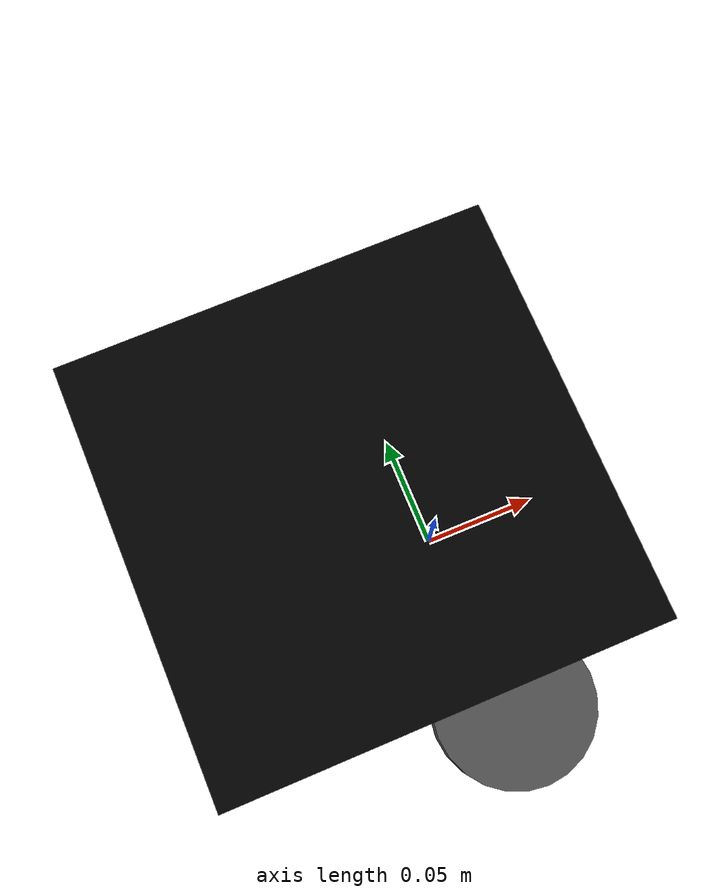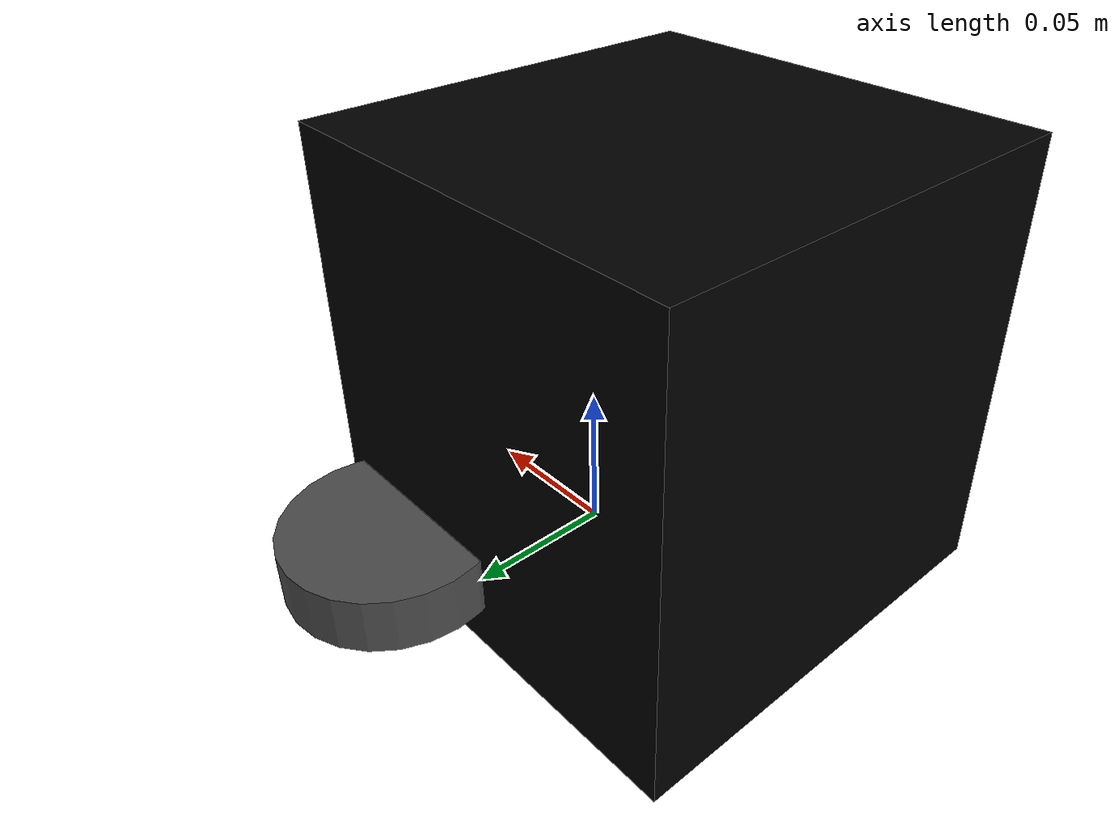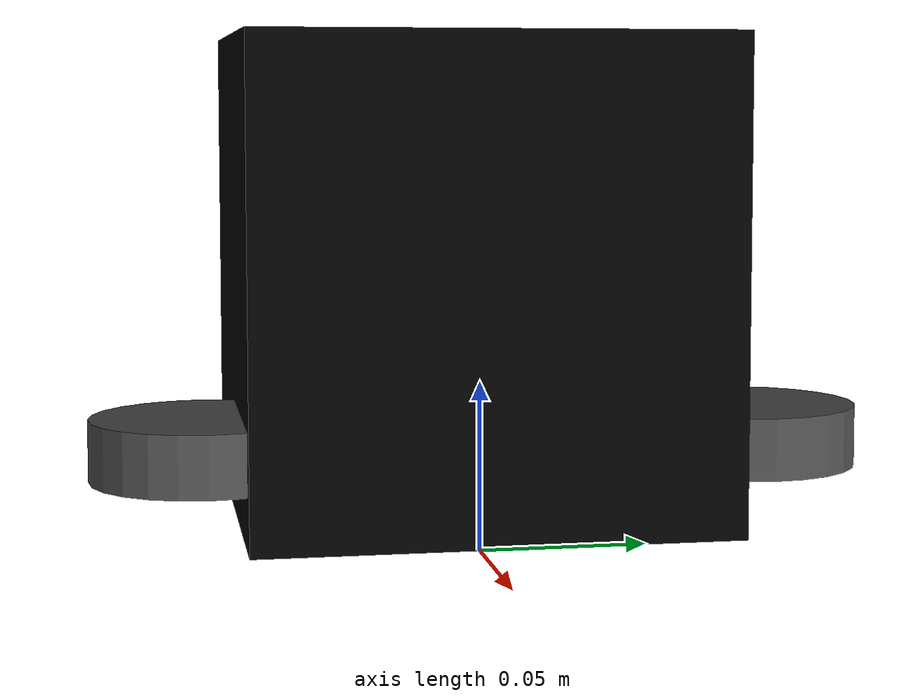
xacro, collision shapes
<?xml version="1.0"?>
<robot name="turtlebot3_burger" xmlns:xacro="http://ros.org/wiki/xacro">

  <xacro:arg name="laser_visual" default="false"/>

  <xacro:property name="base_mesh_file" value="package://turtlebot3_description/meshes/bases/burger_base.stl"/>
  <xacro:property name="wheel_mesh_file" value="package://turtlebot3_description/meshes/wheels/left_tire.stl"/>

  <xacro:property name="wheel_radius" value="0.033"/>
  <xacro:property name="wheel_length" value="0.018"/>
  <xacro:property name="wheel_separation" value="0.160"/>
  <xacro:property name="wheel_separation_length" value="0.138"/>
  <xacro:property name="turning_radius" value="0.1435"/>
  <xacro:property name="robot_radius" value="0.105"/>
  <xacro:property name="caster_mass" value="0.01"/>
  <xacro:property name="caster_radius" value="0.009"/>

  <material name="black"><color rgba="0.0 0.0 0.0 1.0"/></material>
  <material name="dark"><color rgba="0.3 0.3 0.3 1.0"/></material>
  <material name="light_black"><color rgba="0.4 0.4 0.4 1.0"/></material>
  <material name="blue"><color rgba="0.1 0.2 0.8 1.0"/></material>
  <material name="green"><color rgba="0.1 0.8 0.2 1.0"/></material>
  <material name="grey"><color rgba="0.5 0.5 0.5 1.0"/></material>

  <link name="base_footprint"/>

  <joint name="base_footprint_joint" type="fixed">
    <parent link="base_footprint"/>
    <child link="base_link"/>
    <origin xyz="0.0 0.0 0.010" rpy="0 0 0"/>
  </joint>

  <link name="base_link">
    <visual>
      <origin xyz="-0.032 0 0.0" rpy="0 0 0"/>
      <geometry>
        <mesh filename="${base_mesh_file}" scale="0.001 0.001 0.001"/>
      </geometry>
      <material name="black"/>
    </visual>
    <collision>
      <origin xyz="-0.032 0 0.070" rpy="0 0 0"/>
      <geometry>
        <box size="0.140 0.140 0.143"/>
      </geometry>
    </collision>
    <inertial>
      <origin xyz="0.0 0.0 0.0"/>
      <mass value="0.825"/>
      <inertia ixx="1.307950e-03" ixy="0.000000e+00" ixz="0.000000e+00"
               iyy="1.307950e-03" iyz="0.000000e+00"
               izz="1.943920e-03"/>
    </inertial>
  </link>

  <joint name="wheel_left_joint" type="continuous">
    <parent link="base_link"/>
    <child link="wheel_left_link"/>
    <origin xyz="0.0 ${wheel_separation / 2} 0.023" rpy="-1.5708 0 0"/>
    <axis xyz="0 0 1"/>
  </joint>

  <link name="wheel_left_link">
    <visual>
      <origin xyz="0 0 0" rpy="0 0 0"/>
      <geometry>
        <mesh filename="${wheel_mesh_file}" scale="0.001 0.001 0.001"/>
      </geometry>
      <material name="dark"/>
    </visual>
    <collision>
      <origin xyz="0 0 0" rpy="1.5708 0 0"/>
      <geometry>
        <cylinder radius="${wheel_radius}" length="${wheel_length}"/>
      </geometry>
    </collision>
    <inertial>
      <origin xyz="0 0 0"/>
      <mass value="0.028"/>
      <inertia ixx="1.1175580e-05" ixy="0" ixz="0"
               iyy="9.7502924e-06" iyz="0"
               izz="9.7502924e-06"/>
    </inertial>
  </link>

  <joint name="wheel_right_joint" type="continuous">
    <parent link="base_link"/>
    <child link="wheel_right_link"/>
    <origin xyz="0.0 ${-wheel_separation / 2} 0.023" rpy="-1.5708 0 0"/>
    <axis xyz="0 0 1"/>
  </joint>

  <link name="wheel_right_link">
    <visual>
      <origin xyz="0 0 0" rpy="0 3.141592 0"/>
      <geometry>
        <mesh filename="${wheel_mesh_file}" scale="0.001 0.001 0.001"/>
      </geometry>
      <material name="dark"/>
    </visual>
    <collision>
      <origin xyz="0 0 0" rpy="1.5708 0 0"/>
      <geometry>
        <cylinder radius="${wheel_radius}" length="${wheel_length}"/>
      </geometry>
    </collision>
    <inertial>
      <origin xyz="0 0 0"/>
      <mass value="0.028"/>
      <inertia ixx="1.1175580e-05" ixy="0" ixz="0"
               iyy="9.7502924e-06" iyz="0"
               izz="9.7502924e-06"/>
    </inertial>
  </link>

  <joint name="caster_back_joint" type="fixed">
    <parent link="base_link"/>
    <child link="caster_back_link"/>
    <origin xyz="-0.081 0 -0.004" rpy="-1.5708 0 0"/>
  </joint>

  <link name="caster_back_link">
    <collision>
      <origin xyz="0.0 0.001 0.0" rpy="0 0 0"/>
      <geometry>
        <sphere radius="${caster_radius}"/>
      </geometry>
    </collision>
    <inertial>
      <origin xyz="0 0 0"/>
      <mass value="${caster_mass}"/>
      <inertia ixx="0.0" ixy="0.0" ixz="0.0"
               iyy="0.0" iyz="0.0"
               izz="0.0"/>
    </inertial>
  </link>

  <joint name="imu_joint" type="fixed">
    <parent link="base_link"/>
    <child link="imu_link"/>
    <origin xyz="-0.032 0 0.068" rpy="0 0 0"/>
  </joint>

  <link name="imu_link"/>

  <xacro:include filename="$(find hw2_u2210189)/urdf/turtlebot3_burger.gazebo.xacro" />
</robot>
